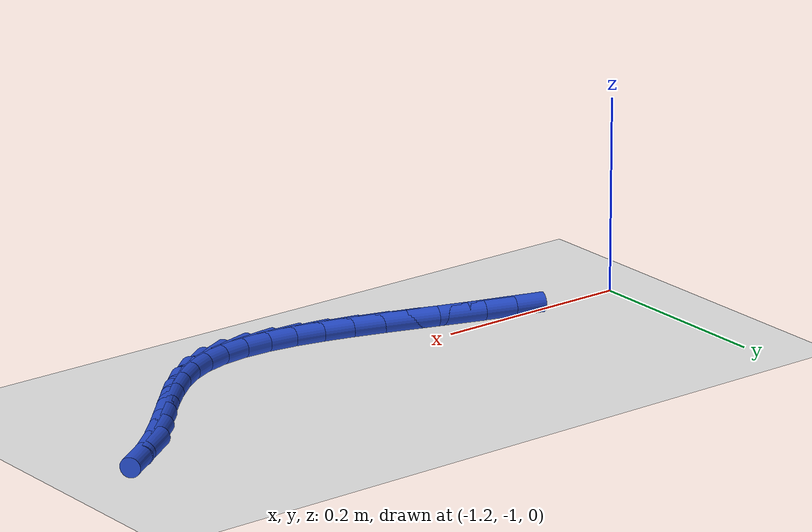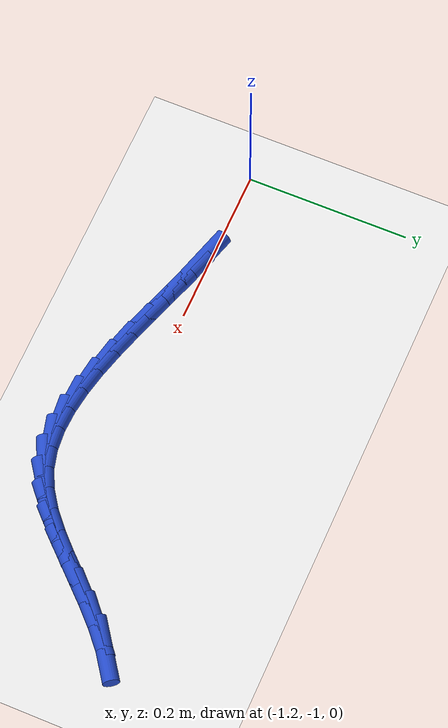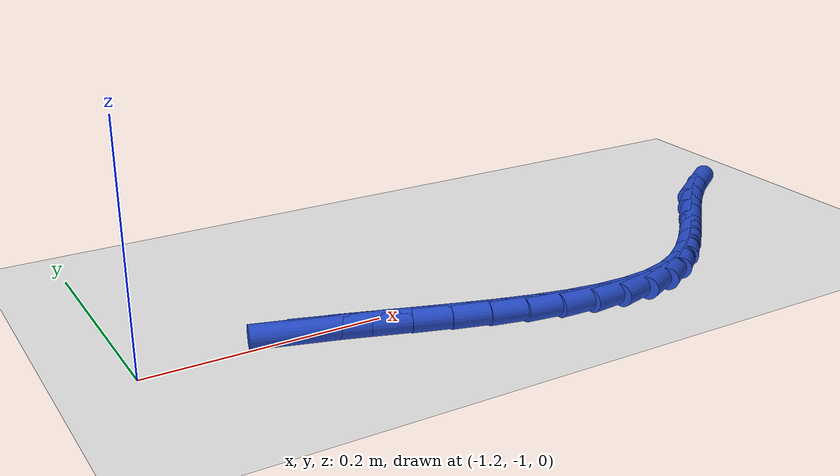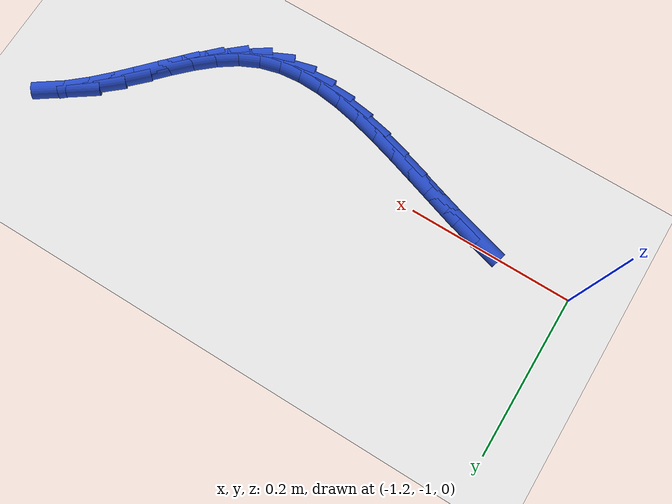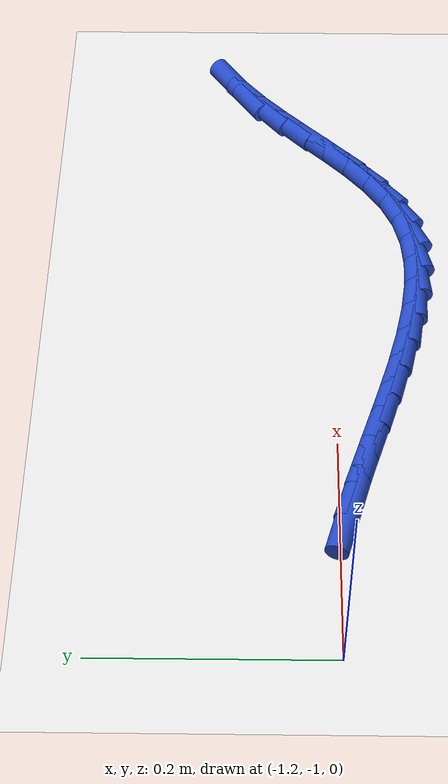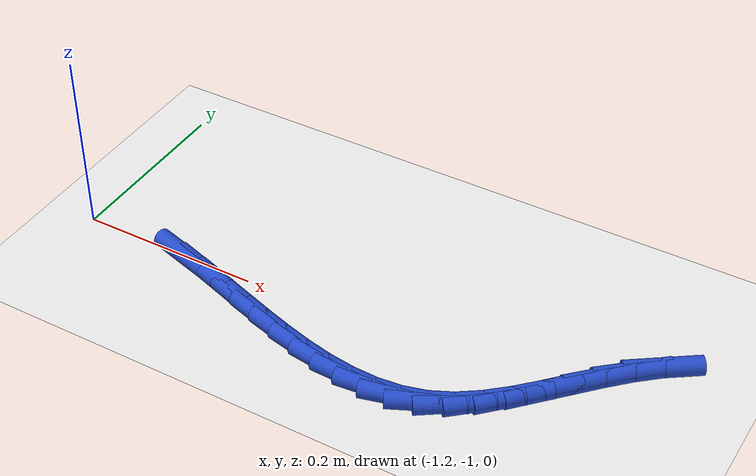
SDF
<sdf version="1.6">
 <world name="default">
  <model name="ground_plane">
   <static>1</static>
   <link name="link">
    <collision name="collision">
     <geometry><plane><normal>0 0 1</normal><size>100 100</size></plane></geometry>
     <surface><friction><ode><mu>100</mu><mu2>50</mu2></ode></friction></surface>
    </collision>
    <visual name="visual">
     <cast_shadows>0</cast_shadows>
     <geometry><plane><normal>0 0 1</normal><size>100 100</size></plane></geometry>
     <material>
      <script><uri>file://media/materials/scripts/gazebo.material</uri><name>Gazebo/WhiteGlow</name></script>
     </material>
    </visual>
   </link>
  </model>
  <model name="line">
   <link name="link_182">
    <pose>-1.0729103028212745 -1.0073122139807 0.01 0 1.57 -0.282182009498699</pose>
    <collision name="collision">
     <geometry><cylinder><radius>0.01</radius><length>0.08</length></cylinder></geometry>
    </collision>
    <visual name="visual">
     <material>
      <script><name>Gazebo/Blue</name><uri>file://media/materials/scripts/gazebo.material</uri></script>
     </material>
     <geometry><cylinder><radius>0.01</radius><length>0.08</length></cylinder></geometry>
    </visual>
   </link>
   <link name="link_183">
    <pose>-1.0431058666214788 -1.0159530638800003 0.01 0 1.57 -0.30959131541014695</pose>
    <collision name="collision">
     <geometry><cylinder><radius>0.01</radius><length>0.08</length></cylinder></geometry>
    </collision>
    <visual name="visual">
     <material>
      <script><name>Gazebo/Blue</name><uri>file://media/materials/scripts/gazebo.material</uri></script>
     </material>
     <geometry><cylinder><radius>0.01</radius><length>0.08</length></cylinder></geometry>
    </visual>
   </link>
   <link name="link_184">
    <pose>-1.0128719992056634 -1.0256241810075675 0.01 0 1.57 -0.32102030466751513</pose>
    <collision name="collision">
     <geometry><cylinder><radius>0.01</radius><length>0.08</length></cylinder></geometry>
    </collision>
    <visual name="visual">
     <material>
      <script><name>Gazebo/Blue</name><uri>file://media/materials/scripts/gazebo.material</uri></script>
     </material>
     <geometry><cylinder><radius>0.01</radius><length>0.08</length></cylinder></geometry>
    </visual>
   </link>
   <link name="link_185">
    <pose>-0.9824049692729209 -1.0357551430629672 0.01 0 1.57 -0.3173897005234896</pose>
    <collision name="collision">
     <geometry><cylinder><radius>0.01</radius><length>0.08</length></cylinder></geometry>
    </collision>
    <visual name="visual">
     <material>
      <script><name>Gazebo/Blue</name><uri>file://media/materials/scripts/gazebo.material</uri></script>
     </material>
     <geometry><cylinder><radius>0.01</radius><length>0.08</length></cylinder></geometry>
    </visual>
   </link>
   <link name="link_186">
    <pose>-0.9519010455223461 -1.045775527745764 0.01 0 1.57 -0.2985772242636629</pose>
    <collision name="collision">
     <geometry><cylinder><radius>0.01</radius><length>0.08</length></cylinder></geometry>
    </collision>
    <visual name="visual">
     <material>
      <script><name>Gazebo/Blue</name><uri>file://media/materials/scripts/gazebo.material</uri></script>
     </material>
     <geometry><cylinder><radius>0.01</radius><length>0.08</length></cylinder></geometry>
    </visual>
   </link>
   <link name="link_187">
    <pose>-0.9215564966530316 -1.0551149127555237 0.01 0 1.57 -0.2634308072542832</pose>
    <collision name="collision">
     <geometry><cylinder><radius>0.01</radius><length>0.08</length></cylinder></geometry>
    </collision>
    <visual name="visual">
     <material>
      <script><name>Gazebo/Blue</name><uri>file://media/materials/scripts/gazebo.material</uri></script>
     </material>
     <geometry><cylinder><radius>0.01</radius><length>0.08</length></cylinder></geometry>
    </visual>
   </link>
   <link name="link_188">
    <pose>-0.8915675913640705 -1.0632028757918104 0.01 0 1.57 -0.20973502755704626</pose>
    <collision name="collision">
     <geometry><cylinder><radius>0.01</radius><length>0.08</length></cylinder></geometry>
    </collision>
    <visual name="visual">
     <material>
      <script><name>Gazebo/Blue</name><uri>file://media/materials/scripts/gazebo.material</uri></script>
     </material>
     <geometry><cylinder><radius>0.01</radius><length>0.08</length></cylinder></geometry>
    </visual>
   </link>
   <link name="link_189">
    <pose>-0.862130598354557 -1.0694689945541902 0.01 0 1.57 -0.134218255896096</pose>
    <collision name="collision">
     <geometry><cylinder><radius>0.01</radius><length>0.08</length></cylinder></geometry>
    </collision>
    <visual name="visual">
     <material>
      <script><name>Gazebo/Blue</name><uri>file://media/materials/scripts/gazebo.material</uri></script>
     </material>
     <geometry><cylinder><radius>0.01</radius><length>0.08</length></cylinder></geometry>
    </visual>
   </link>
   <link name="link_190">
    <pose>-0.8334417863235835 -1.0733428467422277 0.01 0 1.57 -0.03282958653272205</pose>
    <collision name="collision">
     <geometry><cylinder><radius>0.01</radius><length>0.08</length></cylinder></geometry>
    </collision>
    <visual name="visual">
     <material>
      <script><name>Gazebo/Blue</name><uri>file://media/materials/scripts/gazebo.material</uri></script>
     </material>
     <geometry><cylinder><radius>0.01</radius><length>0.08</length></cylinder></geometry>
    </visual>
   </link>
   <link name="link_191">
    <pose>-0.8056974239702439 -1.0742540100554887 0.01 0 1.57 0.09823871353167504</pose>
    <collision name="collision">
     <geometry><cylinder><radius>0.01</radius><length>0.08</length></cylinder></geometry>
    </collision>
    <visual name="visual">
     <material>
      <script><name>Gazebo/Blue</name><uri>file://media/materials/scripts/gazebo.material</uri></script>
     </material>
     <geometry><cylinder><radius>0.01</radius><length>0.08</length></cylinder></geometry>
    </visual>
   </link>
   <link name="link_192">
    <pose>-0.7790937799936304 -1.0716320621935373 0.01 0 1.57 0.2601480761071647</pose>
    <collision name="collision">
     <geometry><cylinder><radius>0.01</radius><length>0.08</length></cylinder></geometry>
    </collision>
    <visual name="visual">
     <material>
      <script><name>Gazebo/Blue</name><uri>file://media/materials/scripts/gazebo.material</uri></script>
     </material>
     <geometry><cylinder><radius>0.01</radius><length>0.08</length></cylinder></geometry>
    </visual>
   </link>
   <link name="link_193">
    <pose>-0.7538271230928384 -1.0649065808559395 0.01 0 1.57 0.4447939306736308</pose>
    <collision name="collision">
     <geometry><cylinder><radius>0.01</radius><length>0.08</length></cylinder></geometry>
    </collision>
    <visual name="visual">
     <material>
      <script><name>Gazebo/Blue</name><uri>file://media/materials/scripts/gazebo.material</uri></script>
     </material>
     <geometry><cylinder><radius>0.01</radius><length>0.08</length></cylinder></geometry>
    </visual>
   </link>
   <link name="link_194">
    <pose>-0.730065582150192 -1.053580636431835 0.01 0 1.57 0.6056273003387446</pose>
    <collision name="collision">
     <geometry><cylinder><radius>0.01</radius><length>0.08</length></cylinder></geometry>
    </collision>
    <visual name="visual">
     <material>
      <script><name>Gazebo/Blue</name><uri>file://media/materials/scripts/gazebo.material</uri></script>
     </material>
     <geometry><cylinder><radius>0.01</radius><length>0.08</length></cylinder></geometry>
    </visual>
   </link>
   <link name="link_195">
    <pose>-0.7076356710454335 -1.0380494943642748 0.01 0 1.57 0.7171185420213295</pose>
    <collision name="collision">
     <geometry><cylinder><radius>0.01</radius><length>0.08</length></cylinder></geometry>
    </collision>
    <visual name="visual">
     <material>
      <script><name>Gazebo/Blue</name><uri>file://media/materials/scripts/gazebo.material</uri></script>
     </material>
     <geometry><cylinder><radius>0.01</radius><length>0.08</length></cylinder></geometry>
    </visual>
   </link>
   <link name="link_196">
    <pose>-0.6861364256579221 -1.0193025238250177 0.01 0 1.57 0.7851357832165862</pose>
    <collision name="collision">
     <geometry><cylinder><radius>0.01</radius><length>0.08</length></cylinder></geometry>
    </collision>
    <visual name="visual">
     <material>
      <script><name>Gazebo/Blue</name><uri>file://media/materials/scripts/gazebo.material</uri></script>
     </material>
     <geometry><cylinder><radius>0.01</radius><length>0.08</length></cylinder></geometry>
    </visual>
   </link>
   <link name="link_197">
    <pose>-0.6651627593428686 -0.9983398607719011 0.01 0 1.57 0.8161809723690001</pose>
    <collision name="collision">
     <geometry><cylinder><radius>0.01</radius><length>0.08</length></cylinder></geometry>
    </collision>
    <visual name="visual">
     <material>
      <script><name>Gazebo/Blue</name><uri>file://media/materials/scripts/gazebo.material</uri></script>
     </material>
     <geometry><cylinder><radius>0.01</radius><length>0.08</length></cylinder></geometry>
    </visual>
   </link>
   <link name="link_198">
    <pose>-0.6443095854554843 -0.9761616411627636 0.01 0 1.57 0.8142399560296547</pose>
    <collision name="collision">
     <geometry><cylinder><radius>0.01</radius><length>0.08</length></cylinder></geometry>
    </collision>
    <visual name="visual">
     <material>
      <script><name>Gazebo/Blue</name><uri>file://media/materials/scripts/gazebo.material</uri></script>
     </material>
     <geometry><cylinder><radius>0.01</radius><length>0.08</length></cylinder></geometry>
    </visual>
   </link>
   <link name="link_199">
    <pose>-0.6231718173509798 -0.953768000955443 0.01 0 1.57 0.7803673043276221</pose>
    <collision name="collision">
     <geometry><cylinder><radius>0.01</radius><length>0.08</length></cylinder></geometry>
    </collision>
    <visual name="visual">
     <material>
      <script><name>Gazebo/Blue</name><uri>file://media/materials/scripts/gazebo.material</uri></script>
     </material>
     <geometry><cylinder><radius>0.01</radius><length>0.08</length></cylinder></geometry>
    </visual>
   </link>
   <link name="link_200">
    <pose>-0.6013443683845656 -0.9321590761077767 0.01 0 1.57 0.7130472027561369</pose>
    <collision name="collision">
     <geometry><cylinder><radius>0.01</radius><length>0.08</length></cylinder></geometry>
    </collision>
    <visual name="visual">
     <material>
      <script><name>Gazebo/Blue</name><uri>file://media/materials/scripts/gazebo.material</uri></script>
     </material>
     <geometry><cylinder><radius>0.01</radius><length>0.08</length></cylinder></geometry>
    </visual>
   </link>
   <link name="link_201">
    <pose>-0.5784221519114536 -0.9123350025776036 0.01 0 1.57 0.6116704341878512</pose>
    <collision name="collision">
     <geometry><cylinder><radius>0.01</radius><length>0.08</length></cylinder></geometry>
    </collision>
    <visual name="visual">
     <material>
      <script><name>Gazebo/Blue</name><uri>file://media/materials/scripts/gazebo.material</uri></script>
     </material>
     <geometry><cylinder><radius>0.01</radius><length>0.08</length></cylinder></geometry>
    </visual>
   </link>
  </model>
 </world>
</sdf>
